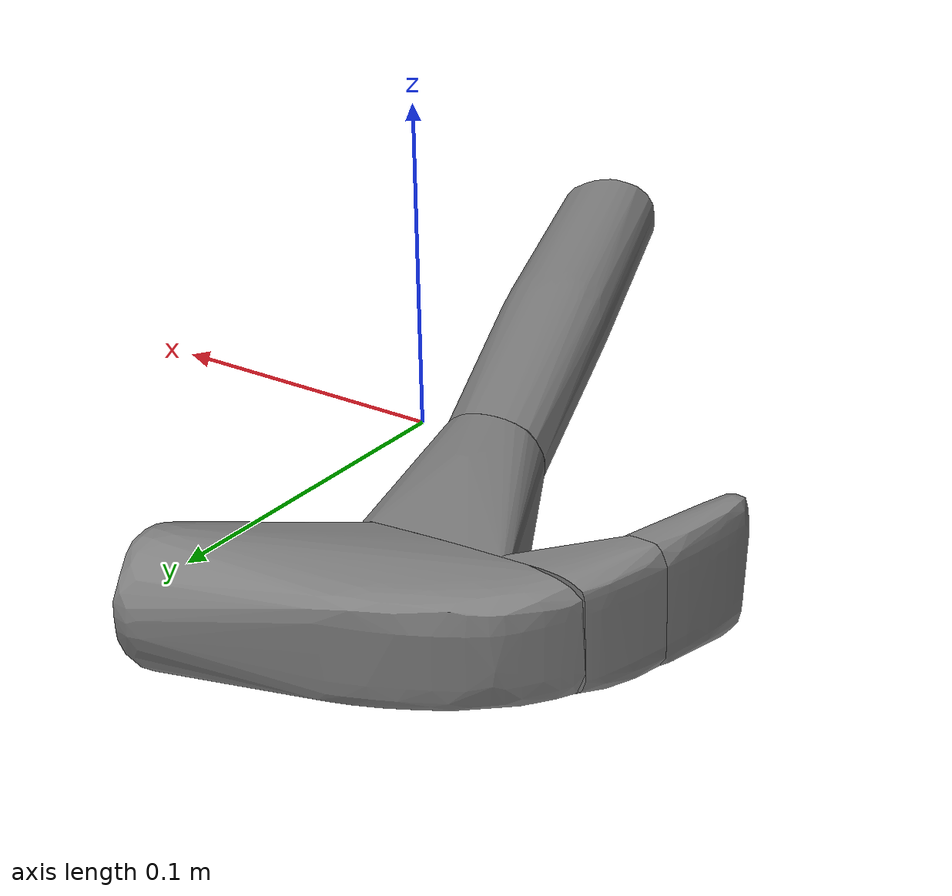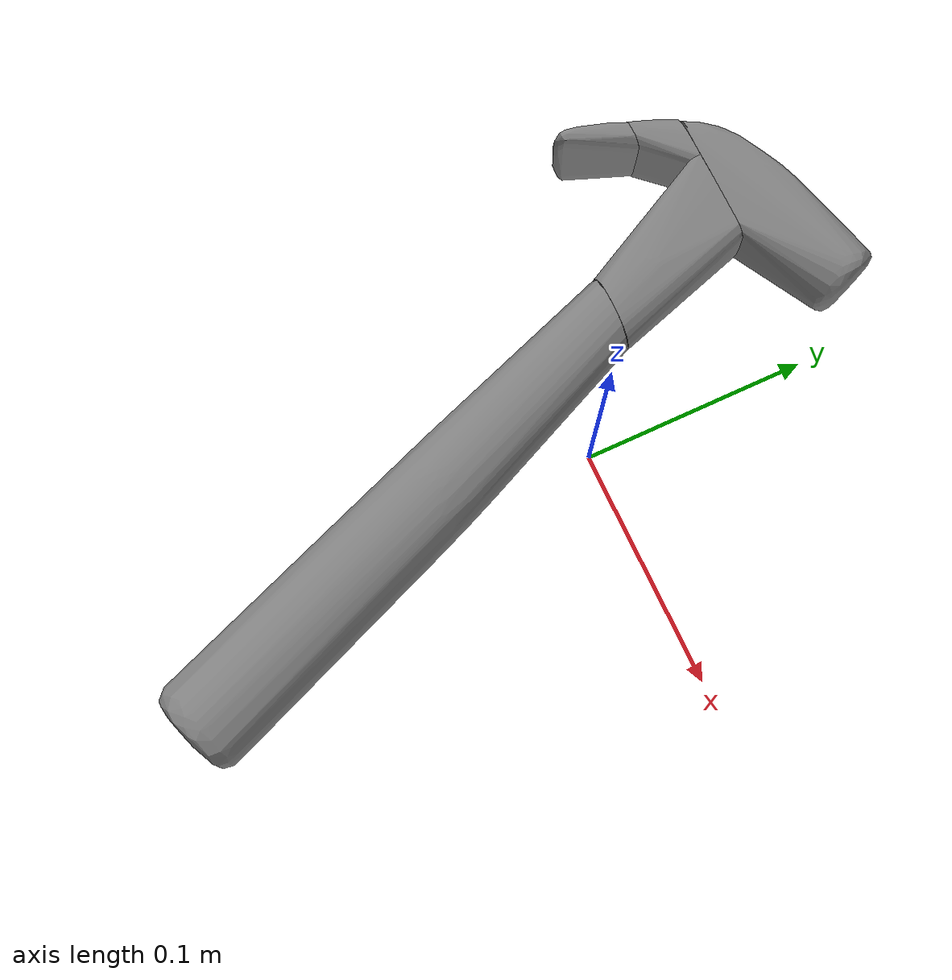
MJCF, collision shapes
<mujoco model="ycb_048_hammer">
  <compiler meshdir="meshes" texturedir="meshes" angle="radian"/>
  <default>
    <default class="visual"><geom contype="0" conaffinity="0" group="2" density="0"/></default>
    <default class="collision"><geom group="3"/></default>
  </default>
  <asset>
    <texture name="ycb_048_hammer_tex" type="2d" file="ycb_048_hammer_texture.png"/>
    <material name="ycb_048_hammer_mat" texture="ycb_048_hammer_tex" specular="0.2" shininess="0.3"/>
    <mesh name="ycb_048_hammer_visual" file="ycb_048_hammer_visual.obj"/>
    <mesh name="ycb_048_hammer_hull0" file="ycb_048_hammer_hull0.obj"/>
    <mesh name="ycb_048_hammer_hull1" file="ycb_048_hammer_hull1.obj"/>
    <mesh name="ycb_048_hammer_hull2" file="ycb_048_hammer_hull2.obj"/>
    <mesh name="ycb_048_hammer_hull3" file="ycb_048_hammer_hull3.obj"/>
    <mesh name="ycb_048_hammer_hull4" file="ycb_048_hammer_hull4.obj"/>
  </asset>
  <worldbody>
    <body name="object" pos="0 0 0">
      <freejoint name="object_free"/>
      <geom type="mesh" mesh="ycb_048_hammer_visual" material="ycb_048_hammer_mat" class="visual"/>
      <geom type="mesh" mesh="ycb_048_hammer_hull0" class="collision"/>
      <geom type="mesh" mesh="ycb_048_hammer_hull1" class="collision"/>
      <geom type="mesh" mesh="ycb_048_hammer_hull2" class="collision"/>
      <geom type="mesh" mesh="ycb_048_hammer_hull3" class="collision"/>
      <geom type="mesh" mesh="ycb_048_hammer_hull4" class="collision"/>
    </body>
  </worldbody>
</mujoco>
